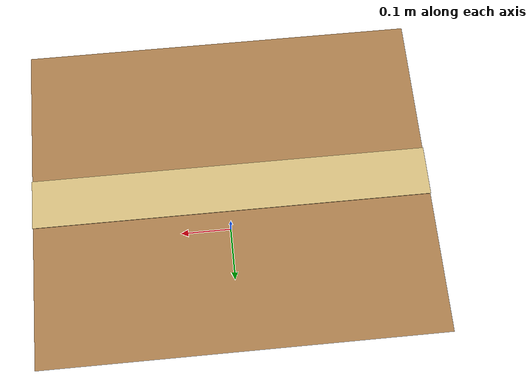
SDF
<?xml version="1.0" ?>
<sdf version="1.6">
  <model name="cargo_box">
    <link name="box_body">
      <visual name="cardboard">
        <pose>0 0 0.175 0 0 0</pose>
        <geometry><box><size>0.50 0.40 0.35</size></box></geometry>
        <material>
          <ambient>0.62 0.46 0.28 1.0</ambient>
          <diffuse>0.74 0.55 0.34 1.0</diffuse>
        </material>
      </visual>

      <!-- Tape strip visual on top -->
      <visual name="tape_strip">
        <pose>0 0 0.351 0 0 0</pose>
        <geometry><box><size>0.50 0.06 0.002</size></box></geometry>
        <material>
          <ambient>0.85 0.75 0.50 1.0</ambient>
          <diffuse>0.92 0.82 0.55 1.0</diffuse>
        </material>
      </visual>

      <!-- Shipping label visual -->
      <visual name="shipping_label">
        <pose>0.251 0.05 0.22 0 0 0</pose>
        <geometry><box><size>0.002 0.14 0.10</size></box></geometry>
        <material>
          <ambient>0.95 0.95 0.95 1.0</ambient>
          <diffuse>1.0 1.0 1.0 1.0</diffuse>
        </material>
      </visual>

      <collision name="col_box">
        <pose>0 0 0.175 0 0 0</pose>
        <geometry><box><size>0.50 0.40 0.35</size></box></geometry>
        <surface>
          <friction>
            <ode>
              <mu>0.8</mu>
              <mu2>0.8</mu2>
            </ode>
          </friction>
        </surface>
      </collision>

      <inertial>
        <mass>8.0</mass>
        <pose>0 0 0.175 0 0 0</pose>
        <inertia>
          <ixx>0.188</ixx><ixy>0.0</ixy><ixz>0.0</ixz>
          <iyy>0.248</iyy><iyz>0.0</iyz>
          <izz>0.273</izz>
        </inertia>
      </inertial>
    </link>
  </model>
</sdf>
